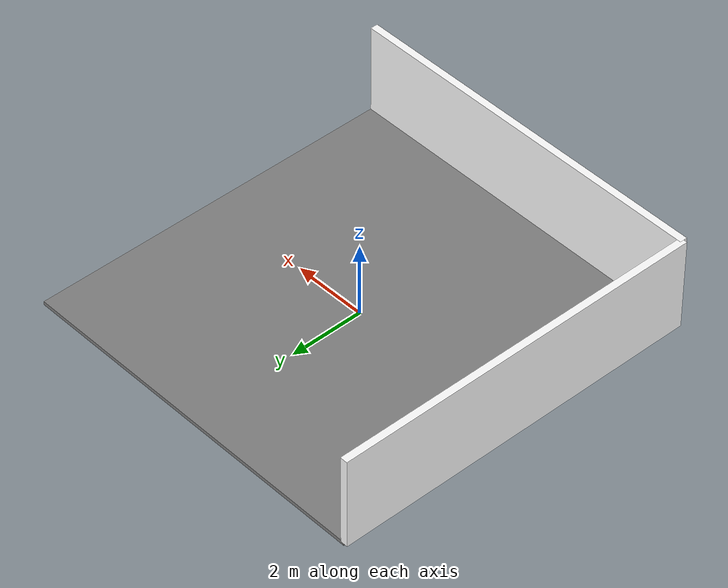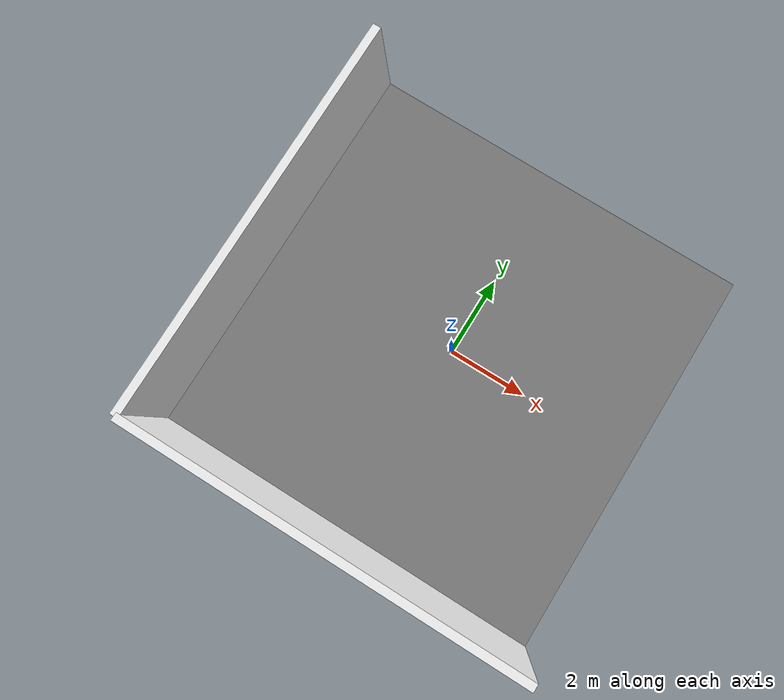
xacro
<?xml version="1.0"?>
<robot xmlns:xacro="http://www.ros.org/wiki/xacro" name="hotel_world">

  <!-- Floor -->
  <link name="floor">
    <visual>
      <geometry>
        <box size="10 10 0.1"/>
      </geometry>
      <material name="grey">
        <color rgba="0.5 0.5 0.5 1"/>
      </material>
    </visual>
    <collision>
      <geometry>
        <box size="10 10 0.1"/>
      </geometry>
    </collision>
    <inertial>
      <mass value="1"/>
      <origin xyz="0 0 0"/>
      <inertia ixx="1" ixy="0" ixz="0" iyy="1" iyz="0" izz="1"/>
    </inertial>
  </link>

  <!-- Walls -->
  <link name="wall1">
    <visual>
      <geometry>
        <box size="0.2 10 2.5"/>
      </geometry>
      <material name="white">
        <color rgba="1 1 1 1"/>
      </material>
    </visual>
    <collision>
      <geometry>
        <box size="0.2 10 2.5"/>
      </geometry>
    </collision>
  </link>

  <joint name="wall1_joint" type="fixed">
    <parent link="floor"/>
    <child link="wall1"/>
    <origin xyz="-5 0 1.25"/>
  </joint>

  <link name="wall2">
    <visual>
      <geometry>
        <box size="10 0.2 2.5"/>
      </geometry>
      <material name="white">
        <color rgba="1 1 1 1"/>
      </material>
    </visual>
    <collision>
      <geometry>
        <box size="10 0.2 2.5"/>
      </geometry>
    </collision>
  </link>

  <joint name="wall2_joint" type="fixed">
    <parent link="floor"/>
    <child link="wall2"/>
    <origin xyz="0 -5 1.25"/>
  </joint>

</robot>
